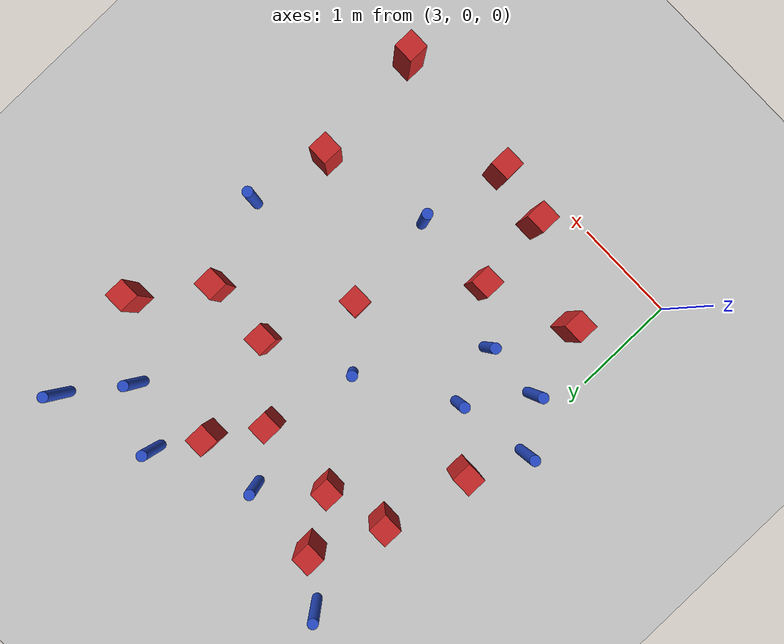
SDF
<sdf version="1.6">
 <world name="default">
  <model name="ground_plane">
   <static>1</static>
   <link name="link">
    <collision name="collision">
     <geometry><plane><normal>0 0 1</normal><size>100 100</size></plane></geometry>
     <surface><friction><ode><mu>100</mu><mu2>50</mu2></ode></friction></surface>
    </collision>
    <visual name="visual">
     <cast_shadows>0</cast_shadows>
     <geometry><plane><normal>0 0 1</normal><size>100 100</size></plane></geometry>
     <material>
      <ambient>1.0 1.0 1.0 1.0</ambient>
      <diffuse>0.8 0.8 0.8 1.0</diffuse>
      <specular>0.01 0.01 0.01 1.000000</specular>
     </material>
    </visual>
   </link>
  </model>
  <model name="pole_obstacle2">
   <static>true</static>
   <pose>3.31272624957 1.4470777101 2.88873142074e-08 -9.90536689395e-09 4.60219949e-07 -1.20965994953e-07</pose>
   <link name="link">
    <pose>0 0 0.3 0 -0 0</pose>
    <inertial>
     <mass>1</mass>
     <inertia><ixx>0.145833</ixx><ixy>0</ixy><ixz>0</ixz><iyy>0.145833</iyy><iyz>0</iyz><izz>0.125</izz></inertia>
    </inertial>
    <collision name="collision">
     <geometry><cylinder><radius>0.05</radius><length>.6</length></cylinder></geometry>
    </collision>
    <visual name="visual">
     <geometry><cylinder><radius>0.05</radius><length>.6</length></cylinder></geometry>
     <material>
      <script><name>Gazebo/Blue</name><uri>file://media/materials/scripts/gazebo.material</uri></script>
     </material>
    </visual>
   </link>
  </model>
  <model name="pole_obstacle24">
   <static>true</static>
   <pose>4.58728867437 2.49431679976 2.88873142074e-08 -9.90536690245e-09 4.6021994898e-07 -1.20965994966e-07</pose>
   <link name="link">
    <pose>0 0 0.3 0 -0 0</pose>
    <inertial>
     <mass>1</mass>
     <inertia><ixx>0.145833</ixx><ixy>0</ixy><ixz>0</ixz><iyy>0.145833</iyy><iyz>0</iyz><izz>0.125</izz></inertia>
    </inertial>
    <collision name="collision">
     <geometry><cylinder><radius>0.05</radius><length>.6</length></cylinder></geometry>
    </collision>
    <visual name="visual">
     <geometry><cylinder><radius>0.05</radius><length>.6</length></cylinder></geometry>
     <material>
      <script><name>Gazebo/Blue</name><uri>file://media/materials/scripts/gazebo.material</uri></script>
     </material>
    </visual>
   </link>
  </model>
  <model name="pole_obstacle26">
   <static>true</static>
   <pose>5.88674631557 3.96535810037 2.88873142074e-08 -9.9053669014e-09 4.60219948982e-07 -1.20965994965e-07</pose>
   <link name="link">
    <pose>0 0 0.3 0 -0 0</pose>
    <inertial>
     <mass>1</mass>
     <inertia><ixx>0.145833</ixx><ixy>0</ixy><ixz>0</ixz><iyy>0.145833</iyy><iyz>0</iyz><izz>0.125</izz></inertia>
    </inertial>
    <collision name="collision">
     <geometry><cylinder><radius>0.05</radius><length>.6</length></cylinder></geometry>
    </collision>
    <visual name="visual">
     <geometry><cylinder><radius>0.05</radius><length>.6</length></cylinder></geometry>
     <material>
      <script><name>Gazebo/Blue</name><uri>file://media/materials/scripts/gazebo.material</uri></script>
     </material>
    </visual>
   </link>
  </model>
  <model name="pole_obstacle28">
   <static>true</static>
   <pose>6.29714605439 4.52770322706 2.88873142074e-08 -9.90536690842e-09 4.60219948965e-07 -1.20965994976e-07</pose>
   <link name="link">
    <pose>0 0 0.3 0 -0 0</pose>
    <inertial>
     <mass>1</mass>
     <inertia><ixx>0.145833</ixx><ixy>0</ixy><ixz>0</ixz><iyy>0.145833</iyy><iyz>0</iyz><izz>0.125</izz></inertia>
    </inertial>
    <collision name="collision">
     <geometry><cylinder><radius>0.05</radius><length>.6</length></cylinder></geometry>
    </collision>
    <visual name="visual">
     <geometry><cylinder><radius>0.05</radius><length>.6</length></cylinder></geometry>
     <material>
      <script><name>Gazebo/Blue</name><uri>file://media/materials/scripts/gazebo.material</uri></script>
     </material>
    </visual>
   </link>
  </model>
  <model name="square_post_obstacle36">
   <static>true</static>
   <pose>6.17569900142 1.2903598487 8.22691968438e-08 7.2212513382e-06 -7.54495500217e-07 2.29674213826e-05</pose>
   <link name="link">
    <pose>0 0 0.25 0 -0 0</pose>
    <inertial>
     <mass>100</mass>
     <inertia>
      <ixx>0.166667</ixx>
      <ixy>0</ixy>
      <ixz>0</ixz>
      <iyy>0.166667</iyy>
      <iyz>0</iyz>
      <izz>0.166667</izz>
     </inertia>
    </inertial>
    <collision name="collision"><geometry><box><size>.2 .2 .5</size></box></geometry></collision>
    <visual name="visual">
     <geometry><box><size>.2 .2 .5</size></box></geometry>
     <material>
      <script><name>Gazebo/Red</name><uri>file://media/materials/scripts/gazebo.material</uri></script>
     </material>
    </visual>
   </link>
  </model>
  <model name="square_post_obstacle41">
   <static>true</static>
   <pose>4.97465609729 0.240932733704 8.22691968438e-08 7.2212513382e-06 -7.54495500217e-07 2.29674213826e-05</pose>
   <link name="link">
    <pose>0 0 0.25 0 -0 0</pose>
    <inertial>
     <mass>100</mass>
     <inertia>
      <ixx>0.166667</ixx>
      <ixy>0</ixy>
      <ixz>0</ixz>
      <iyy>0.166667</iyy>
      <iyz>0</iyz>
      <izz>0.166667</izz>
     </inertia>
    </inertial>
    <collision name="collision"><geometry><box><size>.2 .2 .5</size></box></geometry></collision>
    <visual name="visual">
     <geometry><box><size>.2 .2 .5</size></box></geometry>
     <material>
      <script><name>Gazebo/Red</name><uri>file://media/materials/scripts/gazebo.material</uri></script>
     </material>
    </visual>
   </link>
  </model>
  <model name="square_post_obstacle57">
   <static>true</static>
   <pose>3.50818055181 0.766504139414 8.22691968438e-08 7.2212513382e-06 -7.54495500217e-07 2.29674213826e-05</pose>
   <link name="link">
    <pose>0 0 0.25 0 -0 0</pose>
    <inertial>
     <mass>100</mass>
     <inertia>
      <ixx>0.166667</ixx>
      <ixy>0</ixy>
      <ixz>0</ixz>
      <iyy>0.166667</iyy>
      <iyz>0</iyz>
      <izz>0.166667</izz>
     </inertia>
    </inertial>
    <collision name="collision"><geometry><box><size>.2 .2 .5</size></box></geometry></collision>
    <visual name="visual">
     <geometry><box><size>.2 .2 .5</size></box></geometry>
     <material>
      <script><name>Gazebo/Red</name><uri>file://media/materials/scripts/gazebo.material</uri></script>
     </material>
    </visual>
   </link>
  </model>
  <model name="pole_obstacle55">
   <static>true</static>
   <pose>6.34371870974 2.04272851545 2.88873142074e-08 -9.90536689683e-09 4.60219948993e-07 -1.20965994957e-07</pose>
   <link name="link">
    <pose>0 0 0.3 0 -0 0</pose>
    <inertial>
     <mass>1</mass>
     <inertia><ixx>0.145833</ixx><ixy>0</ixy><ixz>0</ixz><iyy>0.145833</iyy><iyz>0</iyz><izz>0.125</izz></inertia>
    </inertial>
    <collision name="collision">
     <geometry><cylinder><radius>0.05</radius><length>.6</length></cylinder></geometry>
    </collision>
    <visual name="visual">
     <geometry><cylinder><radius>0.05</radius><length>.6</length></cylinder></geometry>
     <material>
      <script><name>Gazebo/Blue</name><uri>file://media/materials/scripts/gazebo.material</uri></script>
     </material>
    </visual>
   </link>
  </model>
  <model name="square_post_obstacle67">
   <static>true</static>
   <pose>6.01877345874 2.8308237326 8.22691968438e-08 7.2212513382e-06 -7.54495500217e-07 2.29674213826e-05</pose>
   <link name="link">
    <pose>0 0 0.25 0 -0 0</pose>
    <inertial>
     <mass>100</mass>
     <inertia>
      <ixx>0.166667</ixx>
      <ixy>0</ixy>
      <ixz>0</ixz>
      <iyy>0.166667</iyy>
      <iyz>0</iyz>
      <izz>0.166667</izz>
     </inertia>
    </inertial>
    <collision name="collision"><geometry><box><size>.2 .2 .5</size></box></geometry></collision>
    <visual name="visual">
     <geometry><box><size>.2 .2 .5</size></box></geometry>
     <material>
      <script><name>Gazebo/Red</name><uri>file://media/materials/scripts/gazebo.material</uri></script>
     </material>
    </visual>
   </link>
  </model>
  <model name="square_post_obstacle69">
   <static>true</static>
   <pose>5.36907606385 2.85567561112 8.22691968438e-08 7.2212513382e-06 -7.54495500217e-07 2.29674213826e-05</pose>
   <link name="link">
    <pose>0 0 0.25 0 -0 0</pose>
    <inertial>
     <mass>100</mass>
     <inertia>
      <ixx>0.166667</ixx>
      <ixy>0</ixy>
      <ixz>0</ixz>
      <iyy>0.166667</iyy>
      <iyz>0</iyz>
      <izz>0.166667</izz>
     </inertia>
    </inertial>
    <collision name="collision"><geometry><box><size>.2 .2 .5</size></box></geometry></collision>
    <visual name="visual">
     <geometry><box><size>.2 .2 .5</size></box></geometry>
     <material>
      <script><name>Gazebo/Red</name><uri>file://media/materials/scripts/gazebo.material</uri></script>
     </material>
    </visual>
   </link>
  </model>
  <model name="pole_obstacle88">
   <static>true</static>
   <pose>5.13687059473 1.06550369926 2.88873142074e-08 -9.90536689445e-09 4.60219948999e-07 -1.20965994956e-07</pose>
   <link name="link">
    <pose>0 0 0.3 0 -0 0</pose>
    <inertial>
     <mass>1</mass>
     <inertia><ixx>0.145833</ixx><ixy>0</ixy><ixz>0</ixz><iyy>0.145833</iyy><iyz>0</iyz><izz>0.125</izz></inertia>
    </inertial>
    <collision name="collision">
     <geometry><cylinder><radius>0.05</radius><length>.6</length></cylinder></geometry>
    </collision>
    <visual name="visual">
     <geometry><cylinder><radius>0.05</radius><length>.6</length></cylinder></geometry>
     <material>
      <script><name>Gazebo/Blue</name><uri>file://media/materials/scripts/gazebo.material</uri></script>
     </material>
    </visual>
   </link>
  </model>
  <model name="square_post_obstacle97">
   <static>true</static>
   <pose>3.22430053221 2.39597877485 8.22691968438e-08 7.2212513382e-06 -7.54495500217e-07 2.29674213826e-05</pose>
   <link name="link">
    <pose>0 0 0.25 0 -0 0</pose>
    <inertial>
     <mass>100</mass>
     <inertia>
      <ixx>0.166667</ixx>
      <ixy>0</ixy>
      <ixz>0</ixz>
      <iyy>0.166667</iyy>
      <iyz>0</iyz>
      <izz>0.166667</izz>
     </inertia>
    </inertial>
    <collision name="collision"><geometry><box><size>.2 .2 .5</size></box></geometry></collision>
    <visual name="visual">
     <geometry><box><size>.2 .2 .5</size></box></geometry>
     <material>
      <script><name>Gazebo/Red</name><uri>file://media/materials/scripts/gazebo.material</uri></script>
     </material>
    </visual>
   </link>
  </model>
  <model name="pole_obstacle116">
   <static>true</static>
   <pose>4.46539809369 3.83447423002 2.88873142074e-08 -9.90536690245e-09 4.6021994898e-07 -1.20965994966e-07</pose>
   <link name="link">
    <pose>0 0 0.3 0 -0 0</pose>
    <inertial>
     <mass>1</mass>
     <inertia><ixx>0.145833</ixx><ixy>0</ixy><ixz>0</ixz><iyy>0.145833</iyy><iyz>0</iyz><izz>0.125</izz></inertia>
    </inertial>
    <collision name="collision">
     <geometry><cylinder><radius>0.05</radius><length>.6</length></cylinder></geometry>
    </collision>
    <visual name="visual">
     <geometry><cylinder><radius>0.05</radius><length>.6</length></cylinder></geometry>
     <material>
      <script><name>Gazebo/Blue</name><uri>file://media/materials/scripts/gazebo.material</uri></script>
     </material>
    </visual>
   </link>
  </model>
  <model name="square_post_obstacle113">
   <static>true</static>
   <pose>5.03201818125 2.03035328564 8.22691968438e-08 7.2212513382e-06 -7.54495500217e-07 2.29674213826e-05</pose>
   <link name="link">
    <pose>0 0 0.25 0 -0 0</pose>
    <inertial>
     <mass>100</mass>
     <inertia>
      <ixx>0.166667</ixx>
      <ixy>0</ixy>
      <ixz>0</ixz>
      <iyy>0.166667</iyy>
      <iyz>0</iyz>
      <izz>0.166667</izz>
     </inertia>
    </inertial>
    <collision name="collision"><geometry><box><size>.2 .2 .5</size></box></geometry></collision>
    <visual name="visual">
     <geometry><box><size>.2 .2 .5</size></box></geometry>
     <material>
      <script><name>Gazebo/Red</name><uri>file://media/materials/scripts/gazebo.material</uri></script>
     </material>
    </visual>
   </link>
  </model>
  <model name="pole_obstacle138">
   <static>true</static>
   <pose>2.97544988494 1.87051776934 2.88873142074e-08 -9.90536689395e-09 4.60219949e-07 -1.20965994953e-07</pose>
   <link name="link">
    <pose>0 0 0.3 0 -0 0</pose>
    <inertial>
     <mass>1</mass>
     <inertia><ixx>0.145833</ixx><ixy>0</ixy><ixz>0</ixz><iyy>0.145833</iyy><iyz>0</iyz><izz>0.125</izz></inertia>
    </inertial>
    <collision name="collision">
     <geometry><cylinder><radius>0.05</radius><length>.6</length></cylinder></geometry>
    </collision>
    <visual name="visual">
     <geometry><cylinder><radius>0.05</radius><length>.6</length></cylinder></geometry>
     <material>
      <script><name>Gazebo/Blue</name><uri>file://media/materials/scripts/gazebo.material</uri></script>
     </material>
    </visual>
   </link>
  </model>
  <model name="square_post_obstacle123">
   <static>true</static>
   <pose>3.41316728436 3.22763096971 8.22691968438e-08 7.2212513382e-06 -7.54495500217e-07 2.29674213826e-05</pose>
   <link name="link">
    <pose>0 0 0.25 0 -0 0</pose>
    <inertial>
     <mass>100</mass>
     <inertia>
      <ixx>0.166667</ixx>
      <ixy>0</ixy>
      <ixz>0</ixz>
      <iyy>0.166667</iyy>
      <iyz>0</iyz>
      <izz>0.166667</izz>
     </inertia>
    </inertial>
    <collision name="collision"><geometry><box><size>.2 .2 .5</size></box></geometry></collision>
    <visual name="visual">
     <geometry><box><size>.2 .2 .5</size></box></geometry>
     <material>
      <script><name>Gazebo/Red</name><uri>file://media/materials/scripts/gazebo.material</uri></script>
     </material>
    </visual>
   </link>
  </model>
  <model name="square_post_obstacle127">
   <static>true</static>
   <pose>5.08931030166 3.83615676052 8.22691968438e-08 7.2212513382e-06 -7.54495500217e-07 2.29674213826e-05</pose>
   <link name="link">
    <pose>0 0 0.25 0 -0 0</pose>
    <inertial>
     <mass>100</mass>
     <inertia>
      <ixx>0.166667</ixx>
      <ixy>0</ixy>
      <ixz>0</ixz>
      <iyy>0.166667</iyy>
      <iyz>0</iyz>
      <izz>0.166667</izz>
     </inertia>
    </inertial>
    <collision name="collision"><geometry><box><size>.2 .2 .5</size></box></geometry></collision>
    <visual name="visual">
     <geometry><box><size>.2 .2 .5</size></box></geometry>
     <material>
      <script><name>Gazebo/Red</name><uri>file://media/materials/scripts/gazebo.material</uri></script>
     </material>
    </visual>
   </link>
  </model>
  <model name="pole_obstacle142">
   <static>true</static>
   <pose>5.34613406979 4.26592915778 2.88873142074e-08 -9.90536690842e-09 4.60219948965e-07 -1.20965994976e-07</pose>
   <link name="link">
    <pose>0 0 0.3 0 -0 0</pose>
    <inertial>
     <mass>1</mass>
     <inertia><ixx>0.145833</ixx><ixy>0</ixy><ixz>0</ixz><iyy>0.145833</iyy><iyz>0</iyz><izz>0.125</izz></inertia>
    </inertial>
    <collision name="collision">
     <geometry><cylinder><radius>0.05</radius><length>.6</length></cylinder></geometry>
    </collision>
    <visual name="visual">
     <geometry><cylinder><radius>0.05</radius><length>.6</length></cylinder></geometry>
     <material>
      <script><name>Gazebo/Blue</name><uri>file://media/materials/scripts/gazebo.material</uri></script>
     </material>
    </visual>
   </link>
  </model>
  <model name="square_post_obstacle155">
   <static>true</static>
   <pose>3.69891914513 3.88703211298 8.22691968438e-08 7.2212513382e-06 -7.54495500217e-07 2.29674213826e-05</pose>
   <link name="link">
    <pose>0 0 0.25 0 -0 0</pose>
    <inertial>
     <mass>100</mass>
     <inertia>
      <ixx>0.166667</ixx>
      <ixy>0</ixy>
      <ixz>0</ixz>
      <iyy>0.166667</iyy>
      <iyz>0</iyz>
      <izz>0.166667</izz>
     </inertia>
    </inertial>
    <collision name="collision"><geometry><box><size>.2 .2 .5</size></box></geometry></collision>
    <visual name="visual">
     <geometry><box><size>.2 .2 .5</size></box></geometry>
     <material>
      <script><name>Gazebo/Red</name><uri>file://media/materials/scripts/gazebo.material</uri></script>
     </material>
    </visual>
   </link>
  </model>
  <model name="square_post_obstacle161">
   <static>true</static>
   <pose>6.29381989404 0.133482597143 8.22691968438e-08 7.2212513382e-06 -7.54495500217e-07 2.29674213826e-05</pose>
   <link name="link">
    <pose>0 0 0.25 0 -0 0</pose>
    <inertial>
     <mass>100</mass>
     <inertia>
      <ixx>0.166667</ixx>
      <ixy>0</ixy>
      <ixz>0</ixz>
      <iyy>0.166667</iyy>
      <iyz>0</iyz>
      <izz>0.166667</izz>
     </inertia>
    </inertial>
    <collision name="collision"><geometry><box><size>.2 .2 .5</size></box></geometry></collision>
    <visual name="visual">
     <geometry><box><size>.2 .2 .5</size></box></geometry>
     <material>
      <script><name>Gazebo/Red</name><uri>file://media/materials/scripts/gazebo.material</uri></script>
     </material>
    </visual>
   </link>
  </model>
  <model name="pole_obstacle172">
   <static>true</static>
   <pose>3.72227441815 1.98897965829 2.88873142074e-08 -9.90536690039e-09 4.60219948984e-07 -1.20965994965e-07</pose>
   <link name="link">
    <pose>0 0 0.3 0 -0 0</pose>
    <inertial>
     <mass>1</mass>
     <inertia><ixx>0.145833</ixx><ixy>0</ixy><ixz>0</ixz><iyy>0.145833</iyy><iyz>0</iyz><izz>0.125</izz></inertia>
    </inertial>
    <collision name="collision">
     <geometry><cylinder><radius>0.05</radius><length>.6</length></cylinder></geometry>
    </collision>
    <visual name="visual">
     <geometry><cylinder><radius>0.05</radius><length>.6</length></cylinder></geometry>
     <material>
      <script><name>Gazebo/Blue</name><uri>file://media/materials/scripts/gazebo.material</uri></script>
     </material>
    </visual>
   </link>
  </model>
  <model name="square_post_obstacle165">
   <static>true</static>
   <pose>4.78798428023 3.36490220905 8.22691968438e-08 7.2212513382e-06 -7.54495500217e-07 2.29674213826e-05</pose>
   <link name="link">
    <pose>0 0 0.25 0 -0 0</pose>
    <inertial>
     <mass>100</mass>
     <inertia>
      <ixx>0.166667</ixx>
      <ixy>0</ixy>
      <ixz>0</ixz>
      <iyy>0.166667</iyy>
      <iyz>0</iyz>
      <izz>0.166667</izz>
     </inertia>
    </inertial>
    <collision name="collision"><geometry><box><size>.2 .2 .5</size></box></geometry></collision>
    <visual name="visual">
     <geometry><box><size>.2 .2 .5</size></box></geometry>
     <material>
      <script><name>Gazebo/Red</name><uri>file://media/materials/scripts/gazebo.material</uri></script>
     </material>
    </visual>
   </link>
  </model>
  <model name="square_post_obstacle183">
   <static>true</static>
   <pose>4.35021783447 1.08118366919 8.22691968438e-08 7.2212513382e-06 -7.54495500217e-07 2.29674213826e-05</pose>
   <link name="link">
    <pose>0 0 0.25 0 -0 0</pose>
    <inertial>
     <mass>100</mass>
     <inertia>
      <ixx>0.166667</ixx>
      <ixy>0</ixy>
      <ixz>0</ixz>
      <iyy>0.166667</iyy>
      <iyz>0</iyz>
      <izz>0.166667</izz>
     </inertia>
    </inertial>
    <collision name="collision"><geometry><box><size>.2 .2 .5</size></box></geometry></collision>
    <visual name="visual">
     <geometry><box><size>.2 .2 .5</size></box></geometry>
     <material>
      <script><name>Gazebo/Red</name><uri>file://media/materials/scripts/gazebo.material</uri></script>
     </material>
    </visual>
   </link>
  </model>
  <model name="square_post_obstacle201">
   <static>true</static>
   <pose>4.42266007226 0.337198512406 8.22691968438e-08 7.2212513382e-06 -7.54495500217e-07 2.29674213826e-05</pose>
   <link name="link">
    <pose>0 0 0.25 0 -0 0</pose>
    <inertial>
     <mass>100</mass>
     <inertia>
      <ixx>0.166667</ixx>
      <ixy>0</ixy>
      <ixz>0</ixz>
      <iyy>0.166667</iyy>
      <iyz>0</iyz>
      <izz>0.166667</izz>
     </inertia>
    </inertial>
    <collision name="collision"><geometry><box><size>.2 .2 .5</size></box></geometry></collision>
    <visual name="visual">
     <geometry><box><size>.2 .2 .5</size></box></geometry>
     <material>
      <script><name>Gazebo/Red</name><uri>file://media/materials/scripts/gazebo.material</uri></script>
     </material>
    </visual>
   </link>
  </model>
  <model name="square_post_obstacle210">
   <static>true</static>
   <pose>6.48382465201 3.45672521851 8.22691968438e-08 7.2212513382e-06 -7.54495500217e-07 2.29674213826e-05</pose>
   <link name="link">
    <pose>0 0 0.25 0 -0 0</pose>
    <inertial>
     <mass>100</mass>
     <inertia>
      <ixx>0.166667</ixx>
      <ixy>0</ixy>
      <ixz>0</ixz>
      <iyy>0.166667</iyy>
      <iyz>0</iyz>
      <izz>0.166667</izz>
     </inertia>
    </inertial>
    <collision name="collision"><geometry><box><size>.2 .2 .5</size></box></geometry></collision>
    <visual name="visual">
     <geometry><box><size>.2 .2 .5</size></box></geometry>
     <material>
      <script><name>Gazebo/Red</name><uri>file://media/materials/scripts/gazebo.material</uri></script>
     </material>
    </visual>
   </link>
  </model>
  <model name="pole_obstacle217">
   <static>true</static>
   <pose>3.90233936088 1.44525504718 2.88873142074e-08 -9.90536689395e-09 4.60219949e-07 -1.20965994953e-07</pose>
   <link name="link">
    <pose>0 0 0.3 0 -0 0</pose>
    <inertial>
     <mass>1</mass>
     <inertia><ixx>0.145833</ixx><ixy>0</ixy><ixz>0</ixz><iyy>0.145833</iyy><iyz>0</iyz><izz>0.125</izz></inertia>
    </inertial>
    <collision name="collision">
     <geometry><cylinder><radius>0.05</radius><length>.6</length></cylinder></geometry>
    </collision>
    <visual name="visual">
     <geometry><cylinder><radius>0.05</radius><length>.6</length></cylinder></geometry>
     <material>
      <script><name>Gazebo/Blue</name><uri>file://media/materials/scripts/gazebo.material</uri></script>
     </material>
    </visual>
   </link>
  </model>
  <model name="pole_obstacle225">
   <static>true</static>
   <pose>3.29376995587 4.21018472681 2.88873142074e-08 -9.90536689859e-09 4.60219948989e-07 -1.20965994961e-07</pose>
   <link name="link">
    <pose>0 0 0.3 0 -0 0</pose>
    <inertial>
     <mass>1</mass>
     <inertia><ixx>0.145833</ixx><ixy>0</ixy><ixz>0</ixz><iyy>0.145833</iyy><iyz>0</iyz><izz>0.125</izz></inertia>
    </inertial>
    <collision name="collision">
     <geometry><cylinder><radius>0.05</radius><length>.6</length></cylinder></geometry>
    </collision>
    <visual name="visual">
     <geometry><cylinder><radius>0.05</radius><length>.6</length></cylinder></geometry>
     <material>
      <script><name>Gazebo/Blue</name><uri>file://media/materials/scripts/gazebo.material</uri></script>
     </material>
    </visual>
   </link>
  </model>
  <model name="square_post_obstacle215">
   <static>true</static>
   <pose>3.99307003262 3.37918996466 8.22691968438e-08 7.2212513382e-06 -7.54495500217e-07 2.29674213826e-05</pose>
   <link name="link">
    <pose>0 0 0.25 0 -0 0</pose>
    <inertial>
     <mass>100</mass>
     <inertia>
      <ixx>0.166667</ixx>
      <ixy>0</ixy>
      <ixz>0</ixz>
      <iyy>0.166667</iyy>
      <iyz>0</iyz>
      <izz>0.166667</izz>
     </inertia>
    </inertial>
    <collision name="collision"><geometry><box><size>.2 .2 .5</size></box></geometry></collision>
    <visual name="visual">
     <geometry><box><size>.2 .2 .5</size></box></geometry>
     <material>
      <script><name>Gazebo/Red</name><uri>file://media/materials/scripts/gazebo.material</uri></script>
     </material>
    </visual>
   </link>
  </model>
 </world>
</sdf>
